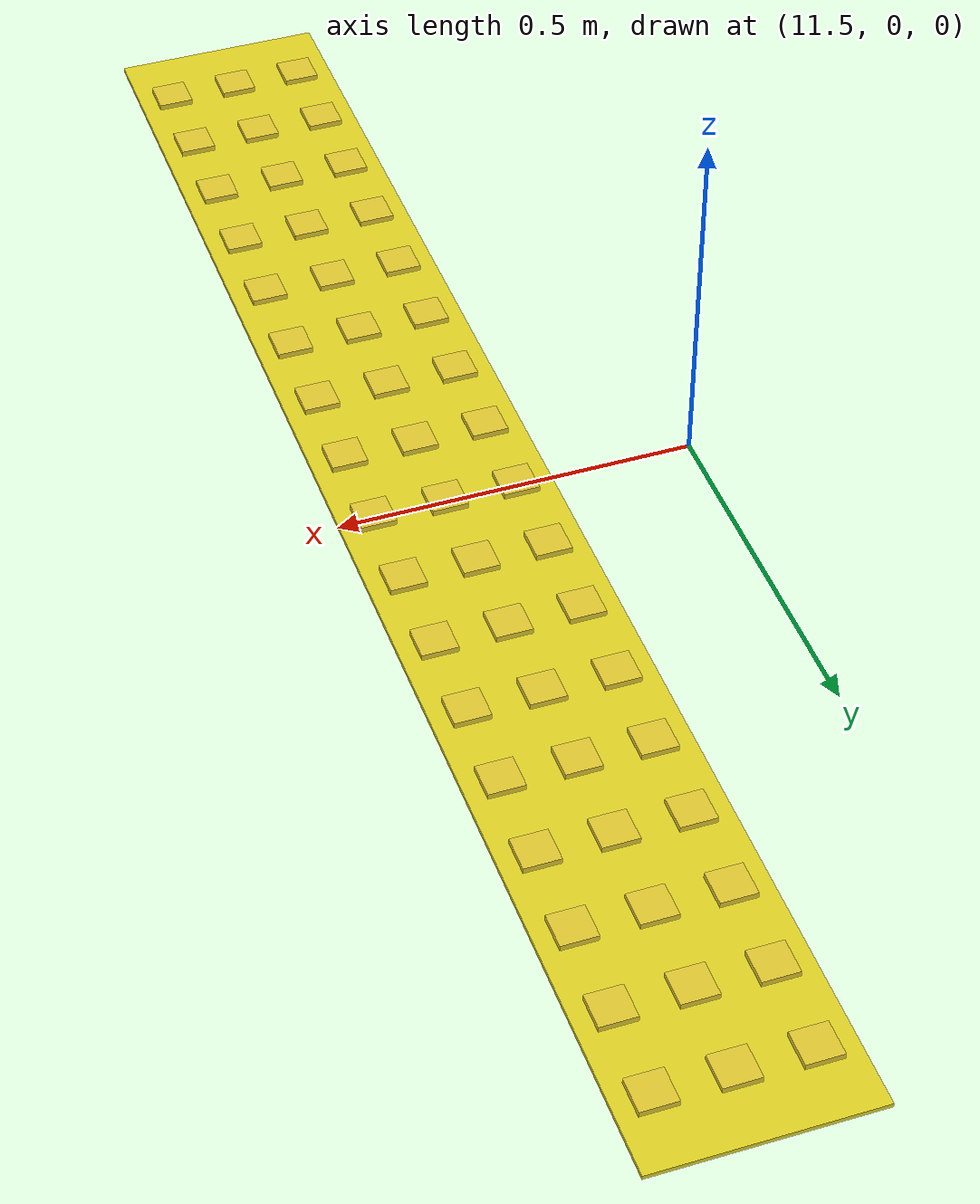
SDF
<sdf version="1.6">
 <world name="default">
  <model name="warn_strip">
   <static>true</static>
   <link name="link">
    <visual name="slab">
     <pose>11.85 0 0.003 0 0 0</pose>
     <geometry><box><size>0.3 2.2 0.006</size></box></geometry>
     <material>
      <script><uri>file://media/materials/scripts/gazebo.material</uri><name>Gazebo/Yellow</name></script>
     </material>
    </visual>
    <visual name="d0">
     <pose>11.75 -1 0.01 0 0 0</pose>
     <geometry><box><size>0.05 0.05 0.008</size></box></geometry>
     <material>
      <script><uri>file://media/materials/scripts/gazebo.material</uri><name>Gazebo/ZincYellow</name></script>
     </material>
    </visual>
    <visual name="d1">
     <pose>11.75 -0.875 0.01 0 0 0</pose>
     <geometry><box><size>0.05 0.05 0.008</size></box></geometry>
     <material>
      <script><uri>file://media/materials/scripts/gazebo.material</uri><name>Gazebo/ZincYellow</name></script>
     </material>
    </visual>
    <visual name="d2">
     <pose>11.75 -0.75 0.01 0 0 0</pose>
     <geometry><box><size>0.05 0.05 0.008</size></box></geometry>
     <material>
      <script><uri>file://media/materials/scripts/gazebo.material</uri><name>Gazebo/ZincYellow</name></script>
     </material>
    </visual>
    <visual name="d3">
     <pose>11.75 -0.625 0.01 0 0 0</pose>
     <geometry><box><size>0.05 0.05 0.008</size></box></geometry>
     <material>
      <script><uri>file://media/materials/scripts/gazebo.material</uri><name>Gazebo/ZincYellow</name></script>
     </material>
    </visual>
    <visual name="d4">
     <pose>11.75 -0.5 0.01 0 0 0</pose>
     <geometry><box><size>0.05 0.05 0.008</size></box></geometry>
     <material>
      <script><uri>file://media/materials/scripts/gazebo.material</uri><name>Gazebo/ZincYellow</name></script>
     </material>
    </visual>
    <visual name="d5">
     <pose>11.75 -0.375 0.01 0 0 0</pose>
     <geometry><box><size>0.05 0.05 0.008</size></box></geometry>
     <material>
      <script><uri>file://media/materials/scripts/gazebo.material</uri><name>Gazebo/ZincYellow</name></script>
     </material>
    </visual>
    <visual name="d6">
     <pose>11.75 -0.25 0.01 0 0 0</pose>
     <geometry><box><size>0.05 0.05 0.008</size></box></geometry>
     <material>
      <script><uri>file://media/materials/scripts/gazebo.material</uri><name>Gazebo/ZincYellow</name></script>
     </material>
    </visual>
    <visual name="d7">
     <pose>11.75 -0.125 0.01 0 0 0</pose>
     <geometry><box><size>0.05 0.05 0.008</size></box></geometry>
     <material>
      <script><uri>file://media/materials/scripts/gazebo.material</uri><name>Gazebo/ZincYellow</name></script>
     </material>
    </visual>
    <visual name="d8">
     <pose>11.75 0 0.01 0 0 0</pose>
     <geometry><box><size>0.05 0.05 0.008</size></box></geometry>
     <material>
      <script><uri>file://media/materials/scripts/gazebo.material</uri><name>Gazebo/ZincYellow</name></script>
     </material>
    </visual>
    <visual name="d9">
     <pose>11.75 0.125 0.01 0 0 0</pose>
     <geometry><box><size>0.05 0.05 0.008</size></box></geometry>
     <material>
      <script><uri>file://media/materials/scripts/gazebo.material</uri><name>Gazebo/ZincYellow</name></script>
     </material>
    </visual>
    <visual name="d10">
     <pose>11.75 0.25 0.01 0 0 0</pose>
     <geometry><box><size>0.05 0.05 0.008</size></box></geometry>
     <material>
      <script><uri>file://media/materials/scripts/gazebo.material</uri><name>Gazebo/ZincYellow</name></script>
     </material>
    </visual>
    <visual name="d11">
     <pose>11.75 0.375 0.01 0 0 0</pose>
     <geometry><box><size>0.05 0.05 0.008</size></box></geometry>
     <material>
      <script><uri>file://media/materials/scripts/gazebo.material</uri><name>Gazebo/ZincYellow</name></script>
     </material>
    </visual>
    <visual name="d12">
     <pose>11.75 0.5 0.01 0 0 0</pose>
     <geometry><box><size>0.05 0.05 0.008</size></box></geometry>
     <material>
      <script><uri>file://media/materials/scripts/gazebo.material</uri><name>Gazebo/ZincYellow</name></script>
     </material>
    </visual>
    <visual name="d13">
     <pose>11.75 0.625 0.01 0 0 0</pose>
     <geometry><box><size>0.05 0.05 0.008</size></box></geometry>
     <material>
      <script><uri>file://media/materials/scripts/gazebo.material</uri><name>Gazebo/ZincYellow</name></script>
     </material>
    </visual>
    <visual name="d14">
     <pose>11.75 0.75 0.01 0 0 0</pose>
     <geometry><box><size>0.05 0.05 0.008</size></box></geometry>
     <material>
      <script><uri>file://media/materials/scripts/gazebo.material</uri><name>Gazebo/ZincYellow</name></script>
     </material>
    </visual>
    <visual name="d15">
     <pose>11.75 0.875 0.01 0 0 0</pose>
     <geometry><box><size>0.05 0.05 0.008</size></box></geometry>
     <material>
      <script><uri>file://media/materials/scripts/gazebo.material</uri><name>Gazebo/ZincYellow</name></script>
     </material>
    </visual>
    <visual name="d16">
     <pose>11.75 1 0.01 0 0 0</pose>
     <geometry><box><size>0.05 0.05 0.008</size></box></geometry>
     <material>
      <script><uri>file://media/materials/scripts/gazebo.material</uri><name>Gazebo/ZincYellow</name></script>
     </material>
    </visual>
    <visual name="d17">
     <pose>11.85 -1 0.01 0 0 0</pose>
     <geometry><box><size>0.05 0.05 0.008</size></box></geometry>
     <material>
      <script><uri>file://media/materials/scripts/gazebo.material</uri><name>Gazebo/ZincYellow</name></script>
     </material>
    </visual>
    <visual name="d18">
     <pose>11.85 -0.875 0.01 0 0 0</pose>
     <geometry><box><size>0.05 0.05 0.008</size></box></geometry>
     <material>
      <script><uri>file://media/materials/scripts/gazebo.material</uri><name>Gazebo/ZincYellow</name></script>
     </material>
    </visual>
    <visual name="d19">
     <pose>11.85 -0.75 0.01 0 0 0</pose>
     <geometry><box><size>0.05 0.05 0.008</size></box></geometry>
     <material>
      <script><uri>file://media/materials/scripts/gazebo.material</uri><name>Gazebo/ZincYellow</name></script>
     </material>
    </visual>
    <visual name="d20">
     <pose>11.85 -0.625 0.01 0 0 0</pose>
     <geometry><box><size>0.05 0.05 0.008</size></box></geometry>
     <material>
      <script><uri>file://media/materials/scripts/gazebo.material</uri><name>Gazebo/ZincYellow</name></script>
     </material>
    </visual>
    <visual name="d21">
     <pose>11.85 -0.5 0.01 0 0 0</pose>
     <geometry><box><size>0.05 0.05 0.008</size></box></geometry>
     <material>
      <script><uri>file://media/materials/scripts/gazebo.material</uri><name>Gazebo/ZincYellow</name></script>
     </material>
    </visual>
    <visual name="d22">
     <pose>11.85 -0.375 0.01 0 0 0</pose>
     <geometry><box><size>0.05 0.05 0.008</size></box></geometry>
     <material>
      <script><uri>file://media/materials/scripts/gazebo.material</uri><name>Gazebo/ZincYellow</name></script>
     </material>
    </visual>
    <visual name="d23">
     <pose>11.85 -0.25 0.01 0 0 0</pose>
     <geometry><box><size>0.05 0.05 0.008</size></box></geometry>
     <material>
      <script><uri>file://media/materials/scripts/gazebo.material</uri><name>Gazebo/ZincYellow</name></script>
     </material>
    </visual>
    <visual name="d24">
     <pose>11.85 -0.125 0.01 0 0 0</pose>
     <geometry><box><size>0.05 0.05 0.008</size></box></geometry>
     <material>
      <script><uri>file://media/materials/scripts/gazebo.material</uri><name>Gazebo/ZincYellow</name></script>
     </material>
    </visual>
    <visual name="d25">
     <pose>11.85 0 0.01 0 0 0</pose>
     <geometry><box><size>0.05 0.05 0.008</size></box></geometry>
     <material>
      <script><uri>file://media/materials/scripts/gazebo.material</uri><name>Gazebo/ZincYellow</name></script>
     </material>
    </visual>
    <visual name="d26">
     <pose>11.85 0.125 0.01 0 0 0</pose>
     <geometry><box><size>0.05 0.05 0.008</size></box></geometry>
     <material>
      <script><uri>file://media/materials/scripts/gazebo.material</uri><name>Gazebo/ZincYellow</name></script>
     </material>
    </visual>
    <visual name="d27">
     <pose>11.85 0.25 0.01 0 0 0</pose>
     <geometry><box><size>0.05 0.05 0.008</size></box></geometry>
     <material>
      <script><uri>file://media/materials/scripts/gazebo.material</uri><name>Gazebo/ZincYellow</name></script>
     </material>
    </visual>
    <visual name="d28">
     <pose>11.85 0.375 0.01 0 0 0</pose>
     <geometry><box><size>0.05 0.05 0.008</size></box></geometry>
     <material>
      <script><uri>file://media/materials/scripts/gazebo.material</uri><name>Gazebo/ZincYellow</name></script>
     </material>
    </visual>
    <visual name="d29">
     <pose>11.85 0.5 0.01 0 0 0</pose>
     <geometry><box><size>0.05 0.05 0.008</size></box></geometry>
     <material>
      <script><uri>file://media/materials/scripts/gazebo.material</uri><name>Gazebo/ZincYellow</name></script>
     </material>
    </visual>
    <visual name="d30">
     <pose>11.85 0.625 0.01 0 0 0</pose>
     <geometry><box><size>0.05 0.05 0.008</size></box></geometry>
     <material>
      <script><uri>file://media/materials/scripts/gazebo.material</uri><name>Gazebo/ZincYellow</name></script>
     </material>
    </visual>
    <visual name="d31">
     <pose>11.85 0.75 0.01 0 0 0</pose>
     <geometry><box><size>0.05 0.05 0.008</size></box></geometry>
     <material>
      <script><uri>file://media/materials/scripts/gazebo.material</uri><name>Gazebo/ZincYellow</name></script>
     </material>
    </visual>
    <visual name="d32">
     <pose>11.85 0.875 0.01 0 0 0</pose>
     <geometry><box><size>0.05 0.05 0.008</size></box></geometry>
     <material>
      <script><uri>file://media/materials/scripts/gazebo.material</uri><name>Gazebo/ZincYellow</name></script>
     </material>
    </visual>
    <visual name="d33">
     <pose>11.85 1 0.01 0 0 0</pose>
     <geometry><box><size>0.05 0.05 0.008</size></box></geometry>
     <material>
      <script><uri>file://media/materials/scripts/gazebo.material</uri><name>Gazebo/ZincYellow</name></script>
     </material>
    </visual>
    <visual name="d34">
     <pose>11.95 -1 0.01 0 0 0</pose>
     <geometry><box><size>0.05 0.05 0.008</size></box></geometry>
     <material>
      <script><uri>file://media/materials/scripts/gazebo.material</uri><name>Gazebo/ZincYellow</name></script>
     </material>
    </visual>
    <visual name="d35">
     <pose>11.95 -0.875 0.01 0 0 0</pose>
     <geometry><box><size>0.05 0.05 0.008</size></box></geometry>
     <material>
      <script><uri>file://media/materials/scripts/gazebo.material</uri><name>Gazebo/ZincYellow</name></script>
     </material>
    </visual>
    <visual name="d36">
     <pose>11.95 -0.75 0.01 0 0 0</pose>
     <geometry><box><size>0.05 0.05 0.008</size></box></geometry>
     <material>
      <script><uri>file://media/materials/scripts/gazebo.material</uri><name>Gazebo/ZincYellow</name></script>
     </material>
    </visual>
    <visual name="d37">
     <pose>11.95 -0.625 0.01 0 0 0</pose>
     <geometry><box><size>0.05 0.05 0.008</size></box></geometry>
     <material>
      <script><uri>file://media/materials/scripts/gazebo.material</uri><name>Gazebo/ZincYellow</name></script>
     </material>
    </visual>
    <visual name="d38">
     <pose>11.95 -0.5 0.01 0 0 0</pose>
     <geometry><box><size>0.05 0.05 0.008</size></box></geometry>
     <material>
      <script><uri>file://media/materials/scripts/gazebo.material</uri><name>Gazebo/ZincYellow</name></script>
     </material>
    </visual>
    <visual name="d39">
     <pose>11.95 -0.375 0.01 0 0 0</pose>
     <geometry><box><size>0.05 0.05 0.008</size></box></geometry>
     <material>
      <script><uri>file://media/materials/scripts/gazebo.material</uri><name>Gazebo/ZincYellow</name></script>
     </material>
    </visual>
    <visual name="d40">
     <pose>11.95 -0.25 0.01 0 0 0</pose>
     <geometry><box><size>0.05 0.05 0.008</size></box></geometry>
     <material>
      <script><uri>file://media/materials/scripts/gazebo.material</uri><name>Gazebo/ZincYellow</name></script>
     </material>
    </visual>
    <visual name="d41">
     <pose>11.95 -0.125 0.01 0 0 0</pose>
     <geometry><box><size>0.05 0.05 0.008</size></box></geometry>
     <material>
      <script><uri>file://media/materials/scripts/gazebo.material</uri><name>Gazebo/ZincYellow</name></script>
     </material>
    </visual>
    <visual name="d42">
     <pose>11.95 0 0.01 0 0 0</pose>
     <geometry><box><size>0.05 0.05 0.008</size></box></geometry>
     <material>
      <script><uri>file://media/materials/scripts/gazebo.material</uri><name>Gazebo/ZincYellow</name></script>
     </material>
    </visual>
    <visual name="d43">
     <pose>11.95 0.125 0.01 0 0 0</pose>
     <geometry><box><size>0.05 0.05 0.008</size></box></geometry>
     <material>
      <script><uri>file://media/materials/scripts/gazebo.material</uri><name>Gazebo/ZincYellow</name></script>
     </material>
    </visual>
    <visual name="d44">
     <pose>11.95 0.25 0.01 0 0 0</pose>
     <geometry><box><size>0.05 0.05 0.008</size></box></geometry>
     <material>
      <script><uri>file://media/materials/scripts/gazebo.material</uri><name>Gazebo/ZincYellow</name></script>
     </material>
    </visual>
    <visual name="d45">
     <pose>11.95 0.375 0.01 0 0 0</pose>
     <geometry><box><size>0.05 0.05 0.008</size></box></geometry>
     <material>
      <script><uri>file://media/materials/scripts/gazebo.material</uri><name>Gazebo/ZincYellow</name></script>
     </material>
    </visual>
    <visual name="d46">
     <pose>11.95 0.5 0.01 0 0 0</pose>
     <geometry><box><size>0.05 0.05 0.008</size></box></geometry>
     <material>
      <script><uri>file://media/materials/scripts/gazebo.material</uri><name>Gazebo/ZincYellow</name></script>
     </material>
    </visual>
    <visual name="d47">
     <pose>11.95 0.625 0.01 0 0 0</pose>
     <geometry><box><size>0.05 0.05 0.008</size></box></geometry>
     <material>
      <script><uri>file://media/materials/scripts/gazebo.material</uri><name>Gazebo/ZincYellow</name></script>
     </material>
    </visual>
    <visual name="d48">
     <pose>11.95 0.75 0.01 0 0 0</pose>
     <geometry><box><size>0.05 0.05 0.008</size></box></geometry>
     <material>
      <script><uri>file://media/materials/scripts/gazebo.material</uri><name>Gazebo/ZincYellow</name></script>
     </material>
    </visual>
    <visual name="d49">
     <pose>11.95 0.875 0.01 0 0 0</pose>
     <geometry><box><size>0.05 0.05 0.008</size></box></geometry>
     <material>
      <script><uri>file://media/materials/scripts/gazebo.material</uri><name>Gazebo/ZincYellow</name></script>
     </material>
    </visual>
    <visual name="d50">
     <pose>11.95 1 0.01 0 0 0</pose>
     <geometry><box><size>0.05 0.05 0.008</size></box></geometry>
     <material>
      <script><uri>file://media/materials/scripts/gazebo.material</uri><name>Gazebo/ZincYellow</name></script>
     </material>
    </visual>
   </link>
  </model>
  <model name="cam_h03_d5">
   <static>true</static>
   <pose>7 0 0.3 0 0.174533 0</pose>
   <link name="link">
    <sensor name="h03_d5" type="camera">
     <camera name="h03_d5">
      <horizontal_fov>1.047198</horizontal_fov>
      <image><width>1920</width><height>1080</height><format>R8G8B8</format></image>
      <clip><near>0.05</near><far>150</far></clip>
     </camera>
     <always_on>0</always_on>
     <update_rate>1.0</update_rate>
     <visualize>0</visualize>
     <plugin name="plug_h03_d5" filename="libgazebo_ros_camera.so">
      <ros><namespace>/gzcam/h03_d5</namespace></ros>
      <camera_name>cam</camera_name>
      <frame_name>gzcam_h03_d5_optical</frame_name>
      <hack_baseline>0.0</hack_baseline>
     </plugin>
    </sensor>
   </link>
  </model>
  <model name="cam_h03_d10">
   <static>true</static>
   <pose>2 0 0.3 0 0.174533 0</pose>
   <link name="link">
    <sensor name="h03_d10" type="camera">
     <camera name="h03_d10">
      <horizontal_fov>1.047198</horizontal_fov>
      <image><width>1920</width><height>1080</height><format>R8G8B8</format></image>
      <clip><near>0.05</near><far>150</far></clip>
     </camera>
     <always_on>0</always_on>
     <update_rate>1.0</update_rate>
     <visualize>0</visualize>
     <plugin name="plug_h03_d10" filename="libgazebo_ros_camera.so">
      <ros><namespace>/gzcam/h03_d10</namespace></ros>
      <camera_name>cam</camera_name>
      <frame_name>gzcam_h03_d10_optical</frame_name>
      <hack_baseline>0.0</hack_baseline>
     </plugin>
    </sensor>
   </link>
  </model>
  <model name="cam_h09_d5">
   <static>true</static>
   <pose>7 0 0.9 0 0.174533 0</pose>
   <link name="link">
    <sensor name="h09_d5" type="camera">
     <camera name="h09_d5">
      <horizontal_fov>1.047198</horizontal_fov>
      <image><width>1920</width><height>1080</height><format>R8G8B8</format></image>
      <clip><near>0.05</near><far>150</far></clip>
     </camera>
     <always_on>0</always_on>
     <update_rate>1.0</update_rate>
     <visualize>0</visualize>
     <plugin name="plug_h09_d5" filename="libgazebo_ros_camera.so">
      <ros><namespace>/gzcam/h09_d5</namespace></ros>
      <camera_name>cam</camera_name>
      <frame_name>gzcam_h09_d5_optical</frame_name>
      <hack_baseline>0.0</hack_baseline>
     </plugin>
    </sensor>
   </link>
  </model>
  <model name="cam_h09_d10">
   <static>true</static>
   <pose>2 0 0.9 0 0.174533 0</pose>
   <link name="link">
    <sensor name="h09_d10" type="camera">
     <camera name="h09_d10">
      <horizontal_fov>1.047198</horizontal_fov>
      <image><width>1920</width><height>1080</height><format>R8G8B8</format></image>
      <clip><near>0.05</near><far>150</far></clip>
     </camera>
     <always_on>0</always_on>
     <update_rate>1.0</update_rate>
     <visualize>0</visualize>
     <plugin name="plug_h09_d10" filename="libgazebo_ros_camera.so">
      <ros><namespace>/gzcam/h09_d10</namespace></ros>
      <camera_name>cam</camera_name>
      <frame_name>gzcam_h09_d10_optical</frame_name>
      <hack_baseline>0.0</hack_baseline>
     </plugin>
    </sensor>
   </link>
  </model>
  <model name="cam_rs_d5">
   <static>true</static>
   <pose>7 0 0.125 0 0.261 0</pose>
   <link name="link">
    <sensor name="rs_d5" type="camera">
     <camera name="rs_d5">
      <horizontal_fov>1.204300</horizontal_fov>
      <image><width>1280</width><height>720</height><format>R8G8B8</format></image>
      <clip><near>0.05</near><far>150</far></clip>
     </camera>
     <always_on>0</always_on>
     <update_rate>1.0</update_rate>
     <visualize>0</visualize>
     <plugin name="plug_rs_d5" filename="libgazebo_ros_camera.so">
      <ros><namespace>/gzcam/rs_d5</namespace></ros>
      <camera_name>cam</camera_name>
      <frame_name>gzcam_rs_d5_optical</frame_name>
      <hack_baseline>0.0</hack_baseline>
     </plugin>
    </sensor>
   </link>
  </model>
 </world>
</sdf>
